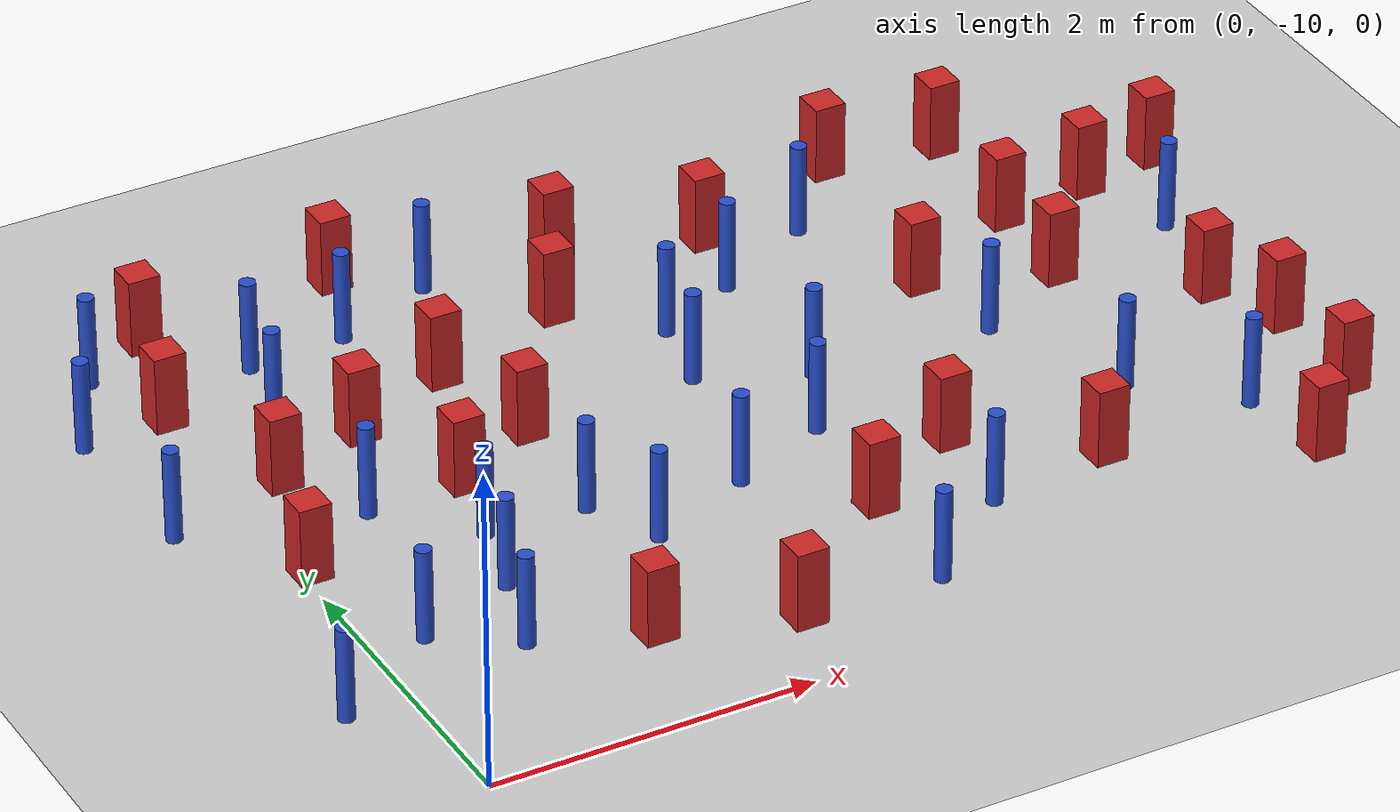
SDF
<sdf version="1.6">
 <world name="default">
  <model name="ground_plane">
   <static>1</static>
   <link name="link">
    <collision name="collision">
     <geometry><plane><normal>0 0 1</normal><size>100 100</size></plane></geometry>
     <surface><friction><ode><mu>100</mu><mu2>50</mu2></ode></friction></surface>
    </collision>
    <visual name="visual">
     <cast_shadows>0</cast_shadows>
     <geometry><plane><normal>0 0 1</normal><size>100 100</size></plane></geometry>
     <material>
      <ambient>1.0 1.0 1.0 1.0</ambient>
      <diffuse>0.8 0.8 0.8 1.0</diffuse>
      <specular>0.01 0.01 0.01 1.000000</specular>
     </material>
    </visual>
   </link>
  </model>
  <model name="pole_obstacle0">
   <static>true</static>
   <pose>0.675583433063 -5.69856653266 2.88873142074e-08 -9.90536689661e-09 4.60219948993e-07 -1.20965994957e-07</pose>
   <link name="link">
    <pose>0 0 0.3 0 -0 0</pose>
    <inertial>
     <mass>1</mass>
     <inertia><ixx>0.145833</ixx><ixy>0</ixy><ixz>0</ixz><iyy>0.145833</iyy><iyz>0</iyz><izz>0.125</izz></inertia>
    </inertial>
    <collision name="collision">
     <geometry><cylinder><radius>0.05</radius><length>.6</length></cylinder></geometry>
    </collision>
    <visual name="visual">
     <geometry><cylinder><radius>0.05</radius><length>.6</length></cylinder></geometry>
     <material>
      <script><name>Gazebo/Blue</name><uri>file://media/materials/scripts/gazebo.material</uri></script>
     </material>
    </visual>
   </link>
  </model>
  <model name="pole_obstacle5">
   <static>true</static>
   <pose>-0.207026416961 -5.39935714129 2.88873142074e-08 -9.90536689703e-09 4.60219948992e-07 -1.20965994959e-07</pose>
   <link name="link">
    <pose>0 0 0.3 0 -0 0</pose>
    <inertial>
     <mass>1</mass>
     <inertia><ixx>0.145833</ixx><ixy>0</ixy><ixz>0</ixz><iyy>0.145833</iyy><iyz>0</iyz><izz>0.125</izz></inertia>
    </inertial>
    <collision name="collision">
     <geometry><cylinder><radius>0.05</radius><length>.6</length></cylinder></geometry>
    </collision>
    <visual name="visual">
     <geometry><cylinder><radius>0.05</radius><length>.6</length></cylinder></geometry>
     <material>
      <script><name>Gazebo/Blue</name><uri>file://media/materials/scripts/gazebo.material</uri></script>
     </material>
    </visual>
   </link>
  </model>
  <model name="pole_obstacle6">
   <static>true</static>
   <pose>5.54569340922 -8.79581876974 2.88873142074e-08 -9.9053668967e-09 4.60219948993e-07 -1.20965994957e-07</pose>
   <link name="link">
    <pose>0 0 0.3 0 -0 0</pose>
    <inertial>
     <mass>1</mass>
     <inertia><ixx>0.145833</ixx><ixy>0</ixy><ixz>0</ixz><iyy>0.145833</iyy><iyz>0</iyz><izz>0.125</izz></inertia>
    </inertial>
    <collision name="collision">
     <geometry><cylinder><radius>0.05</radius><length>.6</length></cylinder></geometry>
    </collision>
    <visual name="visual">
     <geometry><cylinder><radius>0.05</radius><length>.6</length></cylinder></geometry>
     <material>
      <script><name>Gazebo/Blue</name><uri>file://media/materials/scripts/gazebo.material</uri></script>
     </material>
    </visual>
   </link>
  </model>
  <model name="square_post_obstacle2">
   <static>true</static>
   <pose>4.65110520689 -5.38284610721 8.22691968438e-08 7.2212513382e-06 -7.54495500217e-07 2.29674213826e-05</pose>
   <link name="link">
    <pose>0 0 0.25 0 -0 0</pose>
    <inertial>
     <mass>100</mass>
     <inertia>
      <ixx>0.166667</ixx>
      <ixy>0</ixy>
      <ixz>0</ixz>
      <iyy>0.166667</iyy>
      <iyz>0</iyz>
      <izz>0.166667</izz>
     </inertia>
    </inertial>
    <collision name="collision"><geometry><box><size>.2 .2 .5</size></box></geometry></collision>
    <visual name="visual">
     <geometry><box><size>.2 .2 .5</size></box></geometry>
     <material>
      <script><name>Gazebo/Red</name><uri>file://media/materials/scripts/gazebo.material</uri></script>
     </material>
    </visual>
   </link>
  </model>
  <model name="pole_obstacle8">
   <static>true</static>
   <pose>1.08298436727 -7.86564104665 2.88873142074e-08 -9.90536689852e-09 4.60219948989e-07 -1.2096599496e-07</pose>
   <link name="link">
    <pose>0 0 0.3 0 -0 0</pose>
    <inertial>
     <mass>1</mass>
     <inertia><ixx>0.145833</ixx><ixy>0</ixy><ixz>0</ixz><iyy>0.145833</iyy><iyz>0</iyz><izz>0.125</izz></inertia>
    </inertial>
    <collision name="collision">
     <geometry><cylinder><radius>0.05</radius><length>.6</length></cylinder></geometry>
    </collision>
    <visual name="visual">
     <geometry><cylinder><radius>0.05</radius><length>.6</length></cylinder></geometry>
     <material>
      <script><name>Gazebo/Blue</name><uri>file://media/materials/scripts/gazebo.material</uri></script>
     </material>
    </visual>
   </link>
  </model>
  <model name="square_post_obstacle13">
   <static>true</static>
   <pose>0.0485558772936 -7.73937814161 8.22691968438e-08 7.2212513382e-06 -7.54495500217e-07 2.29674213826e-05</pose>
   <link name="link">
    <pose>0 0 0.25 0 -0 0</pose>
    <inertial>
     <mass>100</mass>
     <inertia>
      <ixx>0.166667</ixx>
      <ixy>0</ixy>
      <ixz>0</ixz>
      <iyy>0.166667</iyy>
      <iyz>0</iyz>
      <izz>0.166667</izz>
     </inertia>
    </inertial>
    <collision name="collision"><geometry><box><size>.2 .2 .5</size></box></geometry></collision>
    <visual name="visual">
     <geometry><box><size>.2 .2 .5</size></box></geometry>
     <material>
      <script><name>Gazebo/Red</name><uri>file://media/materials/scripts/gazebo.material</uri></script>
     </material>
    </visual>
   </link>
  </model>
  <model name="pole_obstacle30">
   <static>true</static>
   <pose>0.598111840297 -7.36568905211 2.88873142074e-08 -9.90536689661e-09 4.60219948993e-07 -1.20965994957e-07</pose>
   <link name="link">
    <pose>0 0 0.3 0 -0 0</pose>
    <inertial>
     <mass>1</mass>
     <inertia><ixx>0.145833</ixx><ixy>0</ixy><ixz>0</ixz><iyy>0.145833</iyy><iyz>0</iyz><izz>0.125</izz></inertia>
    </inertial>
    <collision name="collision">
     <geometry><cylinder><radius>0.05</radius><length>.6</length></cylinder></geometry>
    </collision>
    <visual name="visual">
     <geometry><cylinder><radius>0.05</radius><length>.6</length></cylinder></geometry>
     <material>
      <script><name>Gazebo/Blue</name><uri>file://media/materials/scripts/gazebo.material</uri></script>
     </material>
    </visual>
   </link>
  </model>
  <model name="square_post_obstacle22">
   <static>true</static>
   <pose>1.75562362098 -7.05909560668 8.22691968438e-08 7.2212513382e-06 -7.54495500217e-07 2.29674213826e-05</pose>
   <link name="link">
    <pose>0 0 0.25 0 -0 0</pose>
    <inertial>
     <mass>100</mass>
     <inertia>
      <ixx>0.166667</ixx>
      <ixy>0</ixy>
      <ixz>0</ixz>
      <iyy>0.166667</iyy>
      <iyz>0</iyz>
      <izz>0.166667</izz>
     </inertia>
    </inertial>
    <collision name="collision"><geometry><box><size>.2 .2 .5</size></box></geometry></collision>
    <visual name="visual">
     <geometry><box><size>.2 .2 .5</size></box></geometry>
     <material>
      <script><name>Gazebo/Red</name><uri>file://media/materials/scripts/gazebo.material</uri></script>
     </material>
    </visual>
   </link>
  </model>
  <model name="pole_obstacle31">
   <static>true</static>
   <pose>3.10322032923 -9.47544317201 2.88873142074e-08 -9.90536692318e-09 4.6021994893e-07 -1.20965994988e-07</pose>
   <link name="link">
    <pose>0 0 0.3 0 -0 0</pose>
    <inertial>
     <mass>1</mass>
     <inertia><ixx>0.145833</ixx><ixy>0</ixy><ixz>0</ixz><iyy>0.145833</iyy><iyz>0</iyz><izz>0.125</izz></inertia>
    </inertial>
    <collision name="collision">
     <geometry><cylinder><radius>0.05</radius><length>.6</length></cylinder></geometry>
    </collision>
    <visual name="visual">
     <geometry><cylinder><radius>0.05</radius><length>.6</length></cylinder></geometry>
     <material>
      <script><name>Gazebo/Blue</name><uri>file://media/materials/scripts/gazebo.material</uri></script>
     </material>
    </visual>
   </link>
  </model>
  <model name="square_post_obstacle28">
   <static>true</static>
   <pose>3.63431837287 -5.7334413976 8.22691968438e-08 7.2212513382e-06 -7.54495500217e-07 2.29674213826e-05</pose>
   <link name="link">
    <pose>0 0 0.25 0 -0 0</pose>
    <inertial>
     <mass>100</mass>
     <inertia>
      <ixx>0.166667</ixx>
      <ixy>0</ixy>
      <ixz>0</ixz>
      <iyy>0.166667</iyy>
      <iyz>0</iyz>
      <izz>0.166667</izz>
     </inertia>
    </inertial>
    <collision name="collision"><geometry><box><size>.2 .2 .5</size></box></geometry></collision>
    <visual name="visual">
     <geometry><box><size>.2 .2 .5</size></box></geometry>
     <material>
      <script><name>Gazebo/Red</name><uri>file://media/materials/scripts/gazebo.material</uri></script>
     </material>
    </visual>
   </link>
  </model>
  <model name="pole_obstacle36">
   <static>true</static>
   <pose>0.570484334391 -6.22719425879 2.88873142074e-08 -9.90536689661e-09 4.60219948993e-07 -1.20965994957e-07</pose>
   <link name="link">
    <pose>0 0 0.3 0 -0 0</pose>
    <inertial>
     <mass>1</mass>
     <inertia><ixx>0.145833</ixx><ixy>0</ixy><ixz>0</ixz><iyy>0.145833</iyy><iyz>0</iyz><izz>0.125</izz></inertia>
    </inertial>
    <collision name="collision">
     <geometry><cylinder><radius>0.05</radius><length>.6</length></cylinder></geometry>
    </collision>
    <visual name="visual">
     <geometry><cylinder><radius>0.05</radius><length>.6</length></cylinder></geometry>
     <material>
      <script><name>Gazebo/Blue</name><uri>file://media/materials/scripts/gazebo.material</uri></script>
     </material>
    </visual>
   </link>
  </model>
  <model name="square_post_obstacle31">
   <static>true</static>
   <pose>5.96031657942 -7.65763944291 8.22691968438e-08 7.22125133819e-06 -7.54495500217e-07 2.29674213826e-05</pose>
   <link name="link">
    <pose>0 0 0.25 0 -0 0</pose>
    <inertial>
     <mass>100</mass>
     <inertia>
      <ixx>0.166667</ixx>
      <ixy>0</ixy>
      <ixz>0</ixz>
      <iyy>0.166667</iyy>
      <iyz>0</iyz>
      <izz>0.166667</izz>
     </inertia>
    </inertial>
    <collision name="collision"><geometry><box><size>.2 .2 .5</size></box></geometry></collision>
    <visual name="visual">
     <geometry><box><size>.2 .2 .5</size></box></geometry>
     <material>
      <script><name>Gazebo/Red</name><uri>file://media/materials/scripts/gazebo.material</uri></script>
     </material>
    </visual>
   </link>
  </model>
  <model name="square_post_obstacle39">
   <static>true</static>
   <pose>5.30831428107 -6.38712691304 8.22691968438e-08 7.2212513382e-06 -7.54495500217e-07 2.29674213826e-05</pose>
   <link name="link">
    <pose>0 0 0.25 0 -0 0</pose>
    <inertial>
     <mass>100</mass>
     <inertia>
      <ixx>0.166667</ixx>
      <ixy>0</ixy>
      <ixz>0</ixz>
      <iyy>0.166667</iyy>
      <iyz>0</iyz>
      <izz>0.166667</izz>
     </inertia>
    </inertial>
    <collision name="collision"><geometry><box><size>.2 .2 .5</size></box></geometry></collision>
    <visual name="visual">
     <geometry><box><size>.2 .2 .5</size></box></geometry>
     <material>
      <script><name>Gazebo/Red</name><uri>file://media/materials/scripts/gazebo.material</uri></script>
     </material>
    </visual>
   </link>
  </model>
  <model name="pole_obstacle52">
   <static>true</static>
   <pose>3.74567068483 -8.95441529412 2.88873142074e-08 -9.90536692318e-09 4.6021994893e-07 -1.20965994988e-07</pose>
   <link name="link">
    <pose>0 0 0.3 0 -0 0</pose>
    <inertial>
     <mass>1</mass>
     <inertia><ixx>0.145833</ixx><ixy>0</ixy><ixz>0</ixz><iyy>0.145833</iyy><iyz>0</iyz><izz>0.125</izz></inertia>
    </inertial>
    <collision name="collision">
     <geometry><cylinder><radius>0.05</radius><length>.6</length></cylinder></geometry>
    </collision>
    <visual name="visual">
     <geometry><cylinder><radius>0.05</radius><length>.6</length></cylinder></geometry>
     <material>
      <script><name>Gazebo/Blue</name><uri>file://media/materials/scripts/gazebo.material</uri></script>
     </material>
    </visual>
   </link>
  </model>
  <model name="pole_obstacle55">
   <static>true</static>
   <pose>1.29039633156 -5.6681540835 2.88873142074e-08 -9.90536689852e-09 4.60219948989e-07 -1.2096599496e-07</pose>
   <link name="link">
    <pose>0 0 0.3 0 -0 0</pose>
    <inertial>
     <mass>1</mass>
     <inertia><ixx>0.145833</ixx><ixy>0</ixy><ixz>0</ixz><iyy>0.145833</iyy><iyz>0</iyz><izz>0.125</izz></inertia>
    </inertial>
    <collision name="collision">
     <geometry><cylinder><radius>0.05</radius><length>.6</length></cylinder></geometry>
    </collision>
    <visual name="visual">
     <geometry><cylinder><radius>0.05</radius><length>.6</length></cylinder></geometry>
     <material>
      <script><name>Gazebo/Blue</name><uri>file://media/materials/scripts/gazebo.material</uri></script>
     </material>
    </visual>
   </link>
  </model>
  <model name="square_post_obstacle53">
   <static>true</static>
   <pose>1.44937504304 -9.17970778277 8.22691968438e-08 7.22125133819e-06 -7.54495500217e-07 2.29674213826e-05</pose>
   <link name="link">
    <pose>0 0 0.25 0 -0 0</pose>
    <inertial>
     <mass>100</mass>
     <inertia>
      <ixx>0.166667</ixx>
      <ixy>0</ixy>
      <ixz>0</ixz>
      <iyy>0.166667</iyy>
      <iyz>0</iyz>
      <izz>0.166667</izz>
     </inertia>
    </inertial>
    <collision name="collision"><geometry><box><size>.2 .2 .5</size></box></geometry></collision>
    <visual name="visual">
     <geometry><box><size>.2 .2 .5</size></box></geometry>
     <material>
      <script><name>Gazebo/Red</name><uri>file://media/materials/scripts/gazebo.material</uri></script>
     </material>
    </visual>
   </link>
  </model>
  <model name="pole_obstacle74">
   <static>true</static>
   <pose>1.70008067975 -7.91047712542 2.88873142074e-08 -9.90536689852e-09 4.60219948989e-07 -1.2096599496e-07</pose>
   <link name="link">
    <pose>0 0 0.3 0 -0 0</pose>
    <inertial>
     <mass>1</mass>
     <inertia><ixx>0.145833</ixx><ixy>0</ixy><ixz>0</ixz><iyy>0.145833</iyy><iyz>0</iyz><izz>0.125</izz></inertia>
    </inertial>
    <collision name="collision">
     <geometry><cylinder><radius>0.05</radius><length>.6</length></cylinder></geometry>
    </collision>
    <visual name="visual">
     <geometry><cylinder><radius>0.05</radius><length>.6</length></cylinder></geometry>
     <material>
      <script><name>Gazebo/Blue</name><uri>file://media/materials/scripts/gazebo.material</uri></script>
     </material>
    </visual>
   </link>
  </model>
  <model name="pole_obstacle77">
   <static>true</static>
   <pose>-0.46323432677 -7.06206386517 2.88873142074e-08 -9.90536689758e-09 4.60219948991e-07 -1.20965994957e-07</pose>
   <link name="link">
    <pose>0 0 0.3 0 -0 0</pose>
    <inertial>
     <mass>1</mass>
     <inertia><ixx>0.145833</ixx><ixy>0</ixy><ixz>0</ixz><iyy>0.145833</iyy><iyz>0</iyz><izz>0.125</izz></inertia>
    </inertial>
    <collision name="collision">
     <geometry><cylinder><radius>0.05</radius><length>.6</length></cylinder></geometry>
    </collision>
    <visual name="visual">
     <geometry><cylinder><radius>0.05</radius><length>.6</length></cylinder></geometry>
     <material>
      <script><name>Gazebo/Blue</name><uri>file://media/materials/scripts/gazebo.material</uri></script>
     </material>
    </visual>
   </link>
  </model>
  <model name="square_post_obstacle67">
   <static>true</static>
   <pose>6.45340472667 -6.20857471261 8.22691968438e-08 7.2212513382e-06 -7.54495500217e-07 2.29674213826e-05</pose>
   <link name="link">
    <pose>0 0 0.25 0 -0 0</pose>
    <inertial>
     <mass>100</mass>
     <inertia>
      <ixx>0.166667</ixx>
      <ixy>0</ixy>
      <ixz>0</ixz>
      <iyy>0.166667</iyy>
      <iyz>0</iyz>
      <izz>0.166667</izz>
     </inertia>
    </inertial>
    <collision name="collision"><geometry><box><size>.2 .2 .5</size></box></geometry></collision>
    <visual name="visual">
     <geometry><box><size>.2 .2 .5</size></box></geometry>
     <material>
      <script><name>Gazebo/Red</name><uri>file://media/materials/scripts/gazebo.material</uri></script>
     </material>
    </visual>
   </link>
  </model>
  <model name="square_post_obstacle83">
   <static>true</static>
   <pose>6.13631079253 -8.89376324997 8.22691968438e-08 7.2212513382e-06 -7.54495500217e-07 2.29674213826e-05</pose>
   <link name="link">
    <pose>0 0 0.25 0 -0 0</pose>
    <inertial>
     <mass>100</mass>
     <inertia>
      <ixx>0.166667</ixx>
      <ixy>0</ixy>
      <ixz>0</ixz>
      <iyy>0.166667</iyy>
      <iyz>0</iyz>
      <izz>0.166667</izz>
     </inertia>
    </inertial>
    <collision name="collision"><geometry><box><size>.2 .2 .5</size></box></geometry></collision>
    <visual name="visual">
     <geometry><box><size>.2 .2 .5</size></box></geometry>
     <material>
      <script><name>Gazebo/Red</name><uri>file://media/materials/scripts/gazebo.material</uri></script>
     </material>
    </visual>
   </link>
  </model>
  <model name="pole_obstacle92">
   <static>true</static>
   <pose>-0.518571818177 -5.99356535918 2.88873142074e-08 -9.90536689526e-09 4.60219948997e-07 -1.20965994955e-07</pose>
   <link name="link">
    <pose>0 0 0.3 0 -0 0</pose>
    <inertial>
     <mass>1</mass>
     <inertia><ixx>0.145833</ixx><ixy>0</ixy><ixz>0</ixz><iyy>0.145833</iyy><iyz>0</iyz><izz>0.125</izz></inertia>
    </inertial>
    <collision name="collision">
     <geometry><cylinder><radius>0.05</radius><length>.6</length></cylinder></geometry>
    </collision>
    <visual name="visual">
     <geometry><cylinder><radius>0.05</radius><length>.6</length></cylinder></geometry>
     <material>
      <script><name>Gazebo/Blue</name><uri>file://media/materials/scripts/gazebo.material</uri></script>
     </material>
    </visual>
   </link>
  </model>
  <model name="pole_obstacle93">
   <static>true</static>
   <pose>1.94373811365 -5.40981131351 2.88873142074e-08 -9.90536689852e-09 4.60219948989e-07 -1.2096599496e-07</pose>
   <link name="link">
    <pose>0 0 0.3 0 -0 0</pose>
    <inertial>
     <mass>1</mass>
     <inertia><ixx>0.145833</ixx><ixy>0</ixy><ixz>0</ixz><iyy>0.145833</iyy><iyz>0</iyz><izz>0.125</izz></inertia>
    </inertial>
    <collision name="collision">
     <geometry><cylinder><radius>0.05</radius><length>.6</length></cylinder></geometry>
    </collision>
    <visual name="visual">
     <geometry><cylinder><radius>0.05</radius><length>.6</length></cylinder></geometry>
     <material>
      <script><name>Gazebo/Blue</name><uri>file://media/materials/scripts/gazebo.material</uri></script>
     </material>
    </visual>
   </link>
  </model>
  <model name="pole_obstacle96">
   <static>true</static>
   <pose>6.13092266194 -6.91959988411 2.88873142074e-08 -9.90536690842e-09 4.60219948965e-07 -1.20965994976e-07</pose>
   <link name="link">
    <pose>0 0 0.3 0 -0 0</pose>
    <inertial>
     <mass>1</mass>
     <inertia><ixx>0.145833</ixx><ixy>0</ixy><ixz>0</ixz><iyy>0.145833</iyy><iyz>0</iyz><izz>0.125</izz></inertia>
    </inertial>
    <collision name="collision">
     <geometry><cylinder><radius>0.05</radius><length>.6</length></cylinder></geometry>
    </collision>
    <visual name="visual">
     <geometry><cylinder><radius>0.05</radius><length>.6</length></cylinder></geometry>
     <material>
      <script><name>Gazebo/Blue</name><uri>file://media/materials/scripts/gazebo.material</uri></script>
     </material>
    </visual>
   </link>
  </model>
  <model name="pole_obstacle97">
   <static>true</static>
   <pose>4.18607396167 -5.91270285634 2.88873142074e-08 -9.90536690842e-09 4.60219948965e-07 -1.20965994976e-07</pose>
   <link name="link">
    <pose>0 0 0.3 0 -0 0</pose>
    <inertial>
     <mass>1</mass>
     <inertia><ixx>0.145833</ixx><ixy>0</ixy><ixz>0</ixz><iyy>0.145833</iyy><iyz>0</iyz><izz>0.125</izz></inertia>
    </inertial>
    <collision name="collision">
     <geometry><cylinder><radius>0.05</radius><length>.6</length></cylinder></geometry>
    </collision>
    <visual name="visual">
     <geometry><cylinder><radius>0.05</radius><length>.6</length></cylinder></geometry>
     <material>
      <script><name>Gazebo/Blue</name><uri>file://media/materials/scripts/gazebo.material</uri></script>
     </material>
    </visual>
   </link>
  </model>
  <model name="pole_obstacle99">
   <static>true</static>
   <pose>3.2318844253 -7.83187951567 2.88873142074e-08 -9.90536689859e-09 4.60219948989e-07 -1.20965994961e-07</pose>
   <link name="link">
    <pose>0 0 0.3 0 -0 0</pose>
    <inertial>
     <mass>1</mass>
     <inertia><ixx>0.145833</ixx><ixy>0</ixy><ixz>0</ixz><iyy>0.145833</iyy><iyz>0</iyz><izz>0.125</izz></inertia>
    </inertial>
    <collision name="collision">
     <geometry><cylinder><radius>0.05</radius><length>.6</length></cylinder></geometry>
    </collision>
    <visual name="visual">
     <geometry><cylinder><radius>0.05</radius><length>.6</length></cylinder></geometry>
     <material>
      <script><name>Gazebo/Blue</name><uri>file://media/materials/scripts/gazebo.material</uri></script>
     </material>
    </visual>
   </link>
  </model>
  <model name="pole_obstacle100">
   <static>true</static>
   <pose>1.91688635931 -8.36522365853 2.88873142074e-08 -9.90536690474e-09 4.60219948974e-07 -1.2096599497e-07</pose>
   <link name="link">
    <pose>0 0 0.3 0 -0 0</pose>
    <inertial>
     <mass>1</mass>
     <inertia><ixx>0.145833</ixx><ixy>0</ixy><ixz>0</ixz><iyy>0.145833</iyy><iyz>0</iyz><izz>0.125</izz></inertia>
    </inertial>
    <collision name="collision">
     <geometry><cylinder><radius>0.05</radius><length>.6</length></cylinder></geometry>
    </collision>
    <visual name="visual">
     <geometry><cylinder><radius>0.05</radius><length>.6</length></cylinder></geometry>
     <material>
      <script><name>Gazebo/Blue</name><uri>file://media/materials/scripts/gazebo.material</uri></script>
     </material>
    </visual>
   </link>
  </model>
  <model name="square_post_obstacle97">
   <static>true</static>
   <pose>1.58537521487 -6.31892666735 8.22691968438e-08 7.2212513382e-06 -7.54495500217e-07 2.29674213826e-05</pose>
   <link name="link">
    <pose>0 0 0.25 0 -0 0</pose>
    <inertial>
     <mass>100</mass>
     <inertia>
      <ixx>0.166667</ixx>
      <ixy>0</ixy>
      <ixz>0</ixz>
      <iyy>0.166667</iyy>
      <iyz>0</iyz>
      <izz>0.166667</izz>
     </inertia>
    </inertial>
    <collision name="collision"><geometry><box><size>.2 .2 .5</size></box></geometry></collision>
    <visual name="visual">
     <geometry><box><size>.2 .2 .5</size></box></geometry>
     <material>
      <script><name>Gazebo/Red</name><uri>file://media/materials/scripts/gazebo.material</uri></script>
     </material>
    </visual>
   </link>
  </model>
  <model name="square_post_obstacle98">
   <static>true</static>
   <pose>0.00708455474069 -5.9624647893 8.22691968438e-08 7.22125133819e-06 -7.54495500217e-07 2.29674213826e-05</pose>
   <link name="link">
    <pose>0 0 0.25 0 -0 0</pose>
    <inertial>
     <mass>100</mass>
     <inertia>
      <ixx>0.166667</ixx>
      <ixy>0</ixy>
      <ixz>0</ixz>
      <iyy>0.166667</iyy>
      <iyz>0</iyz>
      <izz>0.166667</izz>
     </inertia>
    </inertial>
    <collision name="collision"><geometry><box><size>.2 .2 .5</size></box></geometry></collision>
    <visual name="visual">
     <geometry><box><size>.2 .2 .5</size></box></geometry>
     <material>
      <script><name>Gazebo/Red</name><uri>file://media/materials/scripts/gazebo.material</uri></script>
     </material>
    </visual>
   </link>
  </model>
  <model name="pole_obstacle104">
   <static>true</static>
   <pose>0.322739762193 -8.60876832993 2.88873142074e-08 -9.90536691079e-09 4.6021994896e-07 -1.2096599498e-07</pose>
   <link name="link">
    <pose>0 0 0.3 0 -0 0</pose>
    <inertial>
     <mass>1</mass>
     <inertia><ixx>0.145833</ixx><ixy>0</ixy><ixz>0</ixz><iyy>0.145833</iyy><iyz>0</iyz><izz>0.125</izz></inertia>
    </inertial>
    <collision name="collision">
     <geometry><cylinder><radius>0.05</radius><length>.6</length></cylinder></geometry>
    </collision>
    <visual name="visual">
     <geometry><cylinder><radius>0.05</radius><length>.6</length></cylinder></geometry>
     <material>
      <script><name>Gazebo/Blue</name><uri>file://media/materials/scripts/gazebo.material</uri></script>
     </material>
    </visual>
   </link>
  </model>
  <model name="pole_obstacle105">
   <static>true</static>
   <pose>4.63231336402 -7.39639013359 2.88873142074e-08 -9.90536690842e-09 4.60219948965e-07 -1.20965994976e-07</pose>
   <link name="link">
    <pose>0 0 0.3 0 -0 0</pose>
    <inertial>
     <mass>1</mass>
     <inertia><ixx>0.145833</ixx><ixy>0</ixy><ixz>0</ixz><iyy>0.145833</iyy><iyz>0</iyz><izz>0.125</izz></inertia>
    </inertial>
    <collision name="collision">
     <geometry><cylinder><radius>0.05</radius><length>.6</length></cylinder></geometry>
    </collision>
    <visual name="visual">
     <geometry><cylinder><radius>0.05</radius><length>.6</length></cylinder></geometry>
     <material>
      <script><name>Gazebo/Blue</name><uri>file://media/materials/scripts/gazebo.material</uri></script>
     </material>
    </visual>
   </link>
  </model>
  <model name="pole_obstacle106">
   <static>true</static>
   <pose>2.86139321037 -7.03172533682 2.88873142074e-08 -9.90536689859e-09 4.60219948989e-07 -1.20965994961e-07</pose>
   <link name="link">
    <pose>0 0 0.3 0 -0 0</pose>
    <inertial>
     <mass>1</mass>
     <inertia><ixx>0.145833</ixx><ixy>0</ixy><ixz>0</ixz><iyy>0.145833</iyy><iyz>0</iyz><izz>0.125</izz></inertia>
    </inertial>
    <collision name="collision">
     <geometry><cylinder><radius>0.05</radius><length>.6</length></cylinder></geometry>
    </collision>
    <visual name="visual">
     <geometry><cylinder><radius>0.05</radius><length>.6</length></cylinder></geometry>
     <material>
      <script><name>Gazebo/Blue</name><uri>file://media/materials/scripts/gazebo.material</uri></script>
     </material>
    </visual>
   </link>
  </model>
  <model name="square_post_obstacle109">
   <static>true</static>
   <pose>1.20031488765 -7.35293597036 8.22691968438e-08 7.2212513382e-06 -7.54495500217e-07 2.29674213826e-05</pose>
   <link name="link">
    <pose>0 0 0.25 0 -0 0</pose>
    <inertial>
     <mass>100</mass>
     <inertia>
      <ixx>0.166667</ixx>
      <ixy>0</ixy>
      <ixz>0</ixz>
      <iyy>0.166667</iyy>
      <iyz>0</iyz>
      <izz>0.166667</izz>
     </inertia>
    </inertial>
    <collision name="collision"><geometry><box><size>.2 .2 .5</size></box></geometry></collision>
    <visual name="visual">
     <geometry><box><size>.2 .2 .5</size></box></geometry>
     <material>
      <script><name>Gazebo/Red</name><uri>file://media/materials/scripts/gazebo.material</uri></script>
     </material>
    </visual>
   </link>
  </model>
  <model name="square_post_obstacle110">
   <static>true</static>
   <pose>0.304887065405 -6.84507569531 8.22691968438e-08 7.2212513382e-06 -7.54495500217e-07 2.29674213826e-05</pose>
   <link name="link">
    <pose>0 0 0.25 0 -0 0</pose>
    <inertial>
     <mass>100</mass>
     <inertia>
      <ixx>0.166667</ixx>
      <ixy>0</ixy>
      <ixz>0</ixz>
      <iyy>0.166667</iyy>
      <iyz>0</iyz>
      <izz>0.166667</izz>
     </inertia>
    </inertial>
    <collision name="collision"><geometry><box><size>.2 .2 .5</size></box></geometry></collision>
    <visual name="visual">
     <geometry><box><size>.2 .2 .5</size></box></geometry>
     <material>
      <script><name>Gazebo/Red</name><uri>file://media/materials/scripts/gazebo.material</uri></script>
     </material>
    </visual>
   </link>
  </model>
  <model name="square_post_obstacle117">
   <static>true</static>
   <pose>2.24052092638 -9.44400307617 8.22691968438e-08 7.22125133819e-06 -7.54495500217e-07 2.29674213826e-05</pose>
   <link name="link">
    <pose>0 0 0.25 0 -0 0</pose>
    <inertial>
     <mass>100</mass>
     <inertia>
      <ixx>0.166667</ixx>
      <ixy>0</ixy>
      <ixz>0</ixz>
      <iyy>0.166667</iyy>
      <iyz>0</iyz>
      <izz>0.166667</izz>
     </inertia>
    </inertial>
    <collision name="collision"><geometry><box><size>.2 .2 .5</size></box></geometry></collision>
    <visual name="visual">
     <geometry><box><size>.2 .2 .5</size></box></geometry>
     <material>
      <script><name>Gazebo/Red</name><uri>file://media/materials/scripts/gazebo.material</uri></script>
     </material>
    </visual>
   </link>
  </model>
  <model name="square_post_obstacle124">
   <static>true</static>
   <pose>2.78186843733 -5.4379109846 8.22691968438e-08 7.22125133819e-06 -7.54495500217e-07 2.29674213826e-05</pose>
   <link name="link">
    <pose>0 0 0.25 0 -0 0</pose>
    <inertial>
     <mass>100</mass>
     <inertia>
      <ixx>0.166667</ixx>
      <ixy>0</ixy>
      <ixz>0</ixz>
      <iyy>0.166667</iyy>
      <iyz>0</iyz>
      <izz>0.166667</izz>
     </inertia>
    </inertial>
    <collision name="collision"><geometry><box><size>.2 .2 .5</size></box></geometry></collision>
    <visual name="visual">
     <geometry><box><size>.2 .2 .5</size></box></geometry>
     <material>
      <script><name>Gazebo/Red</name><uri>file://media/materials/scripts/gazebo.material</uri></script>
     </material>
    </visual>
   </link>
  </model>
  <model name="square_post_obstacle131">
   <static>true</static>
   <pose>5.26889909656 -7.06897961863 8.22691968438e-08 7.2212513382e-06 -7.54495500217e-07 2.29674213826e-05</pose>
   <link name="link">
    <pose>0 0 0.25 0 -0 0</pose>
    <inertial>
     <mass>100</mass>
     <inertia>
      <ixx>0.166667</ixx>
      <ixy>0</ixy>
      <ixz>0</ixz>
      <iyy>0.166667</iyy>
      <iyz>0</iyz>
      <izz>0.166667</izz>
     </inertia>
    </inertial>
    <collision name="collision"><geometry><box><size>.2 .2 .5</size></box></geometry></collision>
    <visual name="visual">
     <geometry><box><size>.2 .2 .5</size></box></geometry>
     <material>
      <script><name>Gazebo/Red</name><uri>file://media/materials/scripts/gazebo.material</uri></script>
     </material>
    </visual>
   </link>
  </model>
  <model name="pole_obstacle139">
   <static>true</static>
   <pose>3.49819577835 -7.31691952971 2.88873142074e-08 -9.90536689859e-09 4.60219948989e-07 -1.20965994961e-07</pose>
   <link name="link">
    <pose>0 0 0.3 0 -0 0</pose>
    <inertial>
     <mass>1</mass>
     <inertia><ixx>0.145833</ixx><ixy>0</ixy><ixz>0</ixz><iyy>0.145833</iyy><iyz>0</iyz><izz>0.125</izz></inertia>
    </inertial>
    <collision name="collision">
     <geometry><cylinder><radius>0.05</radius><length>.6</length></cylinder></geometry>
    </collision>
    <visual name="visual">
     <geometry><cylinder><radius>0.05</radius><length>.6</length></cylinder></geometry>
     <material>
      <script><name>Gazebo/Blue</name><uri>file://media/materials/scripts/gazebo.material</uri></script>
     </material>
    </visual>
   </link>
  </model>
  <model name="pole_obstacle149">
   <static>true</static>
   <pose>5.01148218198 -8.28820239965 2.88873142074e-08 -9.9053668967e-09 4.60219948993e-07 -1.20965994957e-07</pose>
   <link name="link">
    <pose>0 0 0.3 0 -0 0</pose>
    <inertial>
     <mass>1</mass>
     <inertia><ixx>0.145833</ixx><ixy>0</ixy><ixz>0</ixz><iyy>0.145833</iyy><iyz>0</iyz><izz>0.125</izz></inertia>
    </inertial>
    <collision name="collision">
     <geometry><cylinder><radius>0.05</radius><length>.6</length></cylinder></geometry>
    </collision>
    <visual name="visual">
     <geometry><cylinder><radius>0.05</radius><length>.6</length></cylinder></geometry>
     <material>
      <script><name>Gazebo/Blue</name><uri>file://media/materials/scripts/gazebo.material</uri></script>
     </material>
    </visual>
   </link>
  </model>
  <model name="square_post_obstacle142">
   <static>true</static>
   <pose>4.5311471858 -8.84480502984 8.22691968438e-08 7.22125133819e-06 -7.54495500217e-07 2.29674213826e-05</pose>
   <link name="link">
    <pose>0 0 0.25 0 -0 0</pose>
    <inertial>
     <mass>100</mass>
     <inertia>
      <ixx>0.166667</ixx>
      <ixy>0</ixy>
      <ixz>0</ixz>
      <iyy>0.166667</iyy>
      <iyz>0</iyz>
      <izz>0.166667</izz>
     </inertia>
    </inertial>
    <collision name="collision"><geometry><box><size>.2 .2 .5</size></box></geometry></collision>
    <visual name="visual">
     <geometry><box><size>.2 .2 .5</size></box></geometry>
     <material>
      <script><name>Gazebo/Red</name><uri>file://media/materials/scripts/gazebo.material</uri></script>
     </material>
    </visual>
   </link>
  </model>
  <model name="square_post_obstacle149">
   <static>true</static>
   <pose>1.49142090886 -5.09019204143 8.22691968438e-08 7.2212513382e-06 -7.54495500217e-07 2.29674213826e-05</pose>
   <link name="link">
    <pose>0 0 0.25 0 -0 0</pose>
    <inertial>
     <mass>100</mass>
     <inertia>
      <ixx>0.166667</ixx>
      <ixy>0</ixy>
      <ixz>0</ixz>
      <iyy>0.166667</iyy>
      <iyz>0</iyz>
      <izz>0.166667</izz>
     </inertia>
    </inertial>
    <collision name="collision"><geometry><box><size>.2 .2 .5</size></box></geometry></collision>
    <visual name="visual">
     <geometry><box><size>.2 .2 .5</size></box></geometry>
     <material>
      <script><name>Gazebo/Red</name><uri>file://media/materials/scripts/gazebo.material</uri></script>
     </material>
    </visual>
   </link>
  </model>
  <model name="pole_obstacle163">
   <static>true</static>
   <pose>-0.391793983075 -9.07181311727 2.88873142074e-08 -9.90536691079e-09 4.6021994896e-07 -1.2096599498e-07</pose>
   <link name="link">
    <pose>0 0 0.3 0 -0 0</pose>
    <inertial>
     <mass>1</mass>
     <inertia><ixx>0.145833</ixx><ixy>0</ixy><ixz>0</ixz><iyy>0.145833</iyy><iyz>0</iyz><izz>0.125</izz></inertia>
    </inertial>
    <collision name="collision">
     <geometry><cylinder><radius>0.05</radius><length>.6</length></cylinder></geometry>
    </collision>
    <visual name="visual">
     <geometry><cylinder><radius>0.05</radius><length>.6</length></cylinder></geometry>
     <material>
      <script><name>Gazebo/Blue</name><uri>file://media/materials/scripts/gazebo.material</uri></script>
     </material>
    </visual>
   </link>
  </model>
  <model name="square_post_obstacle156">
   <static>true</static>
   <pose>5.64417669397 -9.39279188043 8.22691968438e-08 7.22125133819e-06 -7.54495500217e-07 2.29674213826e-05</pose>
   <link name="link">
    <pose>0 0 0.25 0 -0 0</pose>
    <inertial>
     <mass>100</mass>
     <inertia>
      <ixx>0.166667</ixx>
      <ixy>0</ixy>
      <ixz>0</ixz>
      <iyy>0.166667</iyy>
      <iyz>0</iyz>
      <izz>0.166667</izz>
     </inertia>
    </inertial>
    <collision name="collision"><geometry><box><size>.2 .2 .5</size></box></geometry></collision>
    <visual name="visual">
     <geometry><box><size>.2 .2 .5</size></box></geometry>
     <material>
      <script><name>Gazebo/Red</name><uri>file://media/materials/scripts/gazebo.material</uri></script>
     </material>
    </visual>
   </link>
  </model>
  <model name="square_post_obstacle160">
   <static>true</static>
   <pose>5.38253808945 -5.48596058871 8.22691968438e-08 7.2212513382e-06 -7.54495500217e-07 2.29674213826e-05</pose>
   <link name="link">
    <pose>0 0 0.25 0 -0 0</pose>
    <inertial>
     <mass>100</mass>
     <inertia>
      <ixx>0.166667</ixx>
      <ixy>0</ixy>
      <ixz>0</ixz>
      <iyy>0.166667</iyy>
      <iyz>0</iyz>
      <izz>0.166667</izz>
     </inertia>
    </inertial>
    <collision name="collision"><geometry><box><size>.2 .2 .5</size></box></geometry></collision>
    <visual name="visual">
     <geometry><box><size>.2 .2 .5</size></box></geometry>
     <material>
      <script><name>Gazebo/Red</name><uri>file://media/materials/scripts/gazebo.material</uri></script>
     </material>
    </visual>
   </link>
  </model>
  <model name="square_post_obstacle162">
   <static>true</static>
   <pose>2.47160937363 -6.0263617797 8.22691968438e-08 7.2212513382e-06 -7.54495500217e-07 2.29674213826e-05</pose>
   <link name="link">
    <pose>0 0 0.25 0 -0 0</pose>
    <inertial>
     <mass>100</mass>
     <inertia>
      <ixx>0.166667</ixx>
      <ixy>0</ixy>
      <ixz>0</ixz>
      <iyy>0.166667</iyy>
      <iyz>0</iyz>
      <izz>0.166667</izz>
     </inertia>
    </inertial>
    <collision name="collision"><geometry><box><size>.2 .2 .5</size></box></geometry></collision>
    <visual name="visual">
     <geometry><box><size>.2 .2 .5</size></box></geometry>
     <material>
      <script><name>Gazebo/Red</name><uri>file://media/materials/scripts/gazebo.material</uri></script>
     </material>
    </visual>
   </link>
  </model>
  <model name="square_post_obstacle169">
   <static>true</static>
   <pose>6.15772242146 -8.13851431114 8.22691968438e-08 7.2212513382e-06 -7.54495500217e-07 2.29674213826e-05</pose>
   <link name="link">
    <pose>0 0 0.25 0 -0 0</pose>
    <inertial>
     <mass>100</mass>
     <inertia>
      <ixx>0.166667</ixx>
      <ixy>0</ixy>
      <ixz>0</ixz>
      <iyy>0.166667</iyy>
      <iyz>0</iyz>
      <izz>0.166667</izz>
     </inertia>
    </inertial>
    <collision name="collision"><geometry><box><size>.2 .2 .5</size></box></geometry></collision>
    <visual name="visual">
     <geometry><box><size>.2 .2 .5</size></box></geometry>
     <material>
      <script><name>Gazebo/Red</name><uri>file://media/materials/scripts/gazebo.material</uri></script>
     </material>
    </visual>
   </link>
  </model>
  <model name="pole_obstacle179">
   <static>true</static>
   <pose>3.51609570755 -6.25578177123 2.88873142074e-08 -9.90536689859e-09 4.60219948989e-07 -1.20965994961e-07</pose>
   <link name="link">
    <pose>0 0 0.3 0 -0 0</pose>
    <inertial>
     <mass>1</mass>
     <inertia><ixx>0.145833</ixx><ixy>0</ixy><ixz>0</ixz><iyy>0.145833</iyy><iyz>0</iyz><izz>0.125</izz></inertia>
    </inertial>
    <collision name="collision">
     <geometry><cylinder><radius>0.05</radius><length>.6</length></cylinder></geometry>
    </collision>
    <visual name="visual">
     <geometry><cylinder><radius>0.05</radius><length>.6</length></cylinder></geometry>
     <material>
      <script><name>Gazebo/Blue</name><uri>file://media/materials/scripts/gazebo.material</uri></script>
     </material>
    </visual>
   </link>
  </model>
  <model name="square_post_obstacle179">
   <static>true</static>
   <pose>3.82203119608 -8.28477544297 8.22691968438e-08 7.22125133819e-06 -7.54495500217e-07 2.29674213826e-05</pose>
   <link name="link">
    <pose>0 0 0.25 0 -0 0</pose>
    <inertial>
     <mass>100</mass>
     <inertia>
      <ixx>0.166667</ixx>
      <ixy>0</ixy>
      <ixz>0</ixz>
      <iyy>0.166667</iyy>
      <iyz>0</iyz>
      <izz>0.166667</izz>
     </inertia>
    </inertial>
    <collision name="collision"><geometry><box><size>.2 .2 .5</size></box></geometry></collision>
    <visual name="visual">
     <geometry><box><size>.2 .2 .5</size></box></geometry>
     <material>
      <script><name>Gazebo/Red</name><uri>file://media/materials/scripts/gazebo.material</uri></script>
     </material>
    </visual>
   </link>
  </model>
  <model name="square_post_obstacle180">
   <static>true</static>
   <pose>3.13553857446 -8.67241177853 8.22691968438e-08 7.22125133819e-06 -7.54495500217e-07 2.29674213826e-05</pose>
   <link name="link">
    <pose>0 0 0.25 0 -0 0</pose>
    <inertial>
     <mass>100</mass>
     <inertia>
      <ixx>0.166667</ixx>
      <ixy>0</ixy>
      <ixz>0</ixz>
      <iyy>0.166667</iyy>
      <iyz>0</iyz>
      <izz>0.166667</izz>
     </inertia>
    </inertial>
    <collision name="collision"><geometry><box><size>.2 .2 .5</size></box></geometry></collision>
    <visual name="visual">
     <geometry><box><size>.2 .2 .5</size></box></geometry>
     <material>
      <script><name>Gazebo/Red</name><uri>file://media/materials/scripts/gazebo.material</uri></script>
     </material>
    </visual>
   </link>
  </model>
  <model name="square_post_obstacle185">
   <static>true</static>
   <pose>0.912282207713 -6.61322156682 8.22691968438e-08 7.22125133819e-06 -7.54495500217e-07 2.29674213826e-05</pose>
   <link name="link">
    <pose>0 0 0.25 0 -0 0</pose>
    <inertial>
     <mass>100</mass>
     <inertia>
      <ixx>0.166667</ixx>
      <ixy>0</ixy>
      <ixz>0</ixz>
      <iyy>0.166667</iyy>
      <iyz>0</iyz>
      <izz>0.166667</izz>
     </inertia>
    </inertial>
    <collision name="collision"><geometry><box><size>.2 .2 .5</size></box></geometry></collision>
    <visual name="visual">
     <geometry><box><size>.2 .2 .5</size></box></geometry>
     <material>
      <script><name>Gazebo/Red</name><uri>file://media/materials/scripts/gazebo.material</uri></script>
     </material>
    </visual>
   </link>
  </model>
  <model name="square_post_obstacle193">
   <static>true</static>
   <pose>5.92028180102 -6.31031421471 8.22691968438e-08 7.22125133819e-06 -7.54495500217e-07 2.29674213826e-05</pose>
   <link name="link">
    <pose>0 0 0.25 0 -0 0</pose>
    <inertial>
     <mass>100</mass>
     <inertia>
      <ixx>0.166667</ixx>
      <ixy>0</ixy>
      <ixz>0</ixz>
      <iyy>0.166667</iyy>
      <iyz>0</iyz>
      <izz>0.166667</izz>
     </inertia>
    </inertial>
    <collision name="collision"><geometry><box><size>.2 .2 .5</size></box></geometry></collision>
    <visual name="visual">
     <geometry><box><size>.2 .2 .5</size></box></geometry>
     <material>
      <script><name>Gazebo/Red</name><uri>file://media/materials/scripts/gazebo.material</uri></script>
     </material>
    </visual>
   </link>
  </model>
  <model name="square_post_obstacle194">
   <static>true</static>
   <pose>0.231028935788 -5.14907908194 8.22691968438e-08 7.2212513382e-06 -7.54495500217e-07 2.29674213826e-05</pose>
   <link name="link">
    <pose>0 0 0.25 0 -0 0</pose>
    <inertial>
     <mass>100</mass>
     <inertia>
      <ixx>0.166667</ixx>
      <ixy>0</ixy>
      <ixz>0</ixz>
      <iyy>0.166667</iyy>
      <iyz>0</iyz>
      <izz>0.166667</izz>
     </inertia>
    </inertial>
    <collision name="collision"><geometry><box><size>.2 .2 .5</size></box></geometry></collision>
    <visual name="visual">
     <geometry><box><size>.2 .2 .5</size></box></geometry>
     <material>
      <script><name>Gazebo/Red</name><uri>file://media/materials/scripts/gazebo.material</uri></script>
     </material>
    </visual>
   </link>
  </model>
  <model name="pole_obstacle192">
   <static>true</static>
   <pose>0.78687522466 -8.9265204974 2.88873142074e-08 -9.90536690779e-09 4.60219948967e-07 -1.20965994975e-07</pose>
   <link name="link">
    <pose>0 0 0.3 0 -0 0</pose>
    <inertial>
     <mass>1</mass>
     <inertia><ixx>0.145833</ixx><ixy>0</ixy><ixz>0</ixz><iyy>0.145833</iyy><iyz>0</iyz><izz>0.125</izz></inertia>
    </inertial>
    <collision name="collision">
     <geometry><cylinder><radius>0.05</radius><length>.6</length></cylinder></geometry>
    </collision>
    <visual name="visual">
     <geometry><cylinder><radius>0.05</radius><length>.6</length></cylinder></geometry>
     <material>
      <script><name>Gazebo/Blue</name><uri>file://media/materials/scripts/gazebo.material</uri></script>
     </material>
    </visual>
   </link>
  </model>
  <model name="pole_obstacle204">
   <static>true</static>
   <pose>0.952017131197 -8.37163998956 2.88873142074e-08 -9.9053669105e-09 4.6021994896e-07 -1.20965994979e-07</pose>
   <link name="link">
    <pose>0 0 0.3 0 -0 0</pose>
    <inertial>
     <mass>1</mass>
     <inertia><ixx>0.145833</ixx><ixy>0</ixy><ixz>0</ixz><iyy>0.145833</iyy><iyz>0</iyz><izz>0.125</izz></inertia>
    </inertial>
    <collision name="collision">
     <geometry><cylinder><radius>0.05</radius><length>.6</length></cylinder></geometry>
    </collision>
    <visual name="visual">
     <geometry><cylinder><radius>0.05</radius><length>.6</length></cylinder></geometry>
     <material>
      <script><name>Gazebo/Blue</name><uri>file://media/materials/scripts/gazebo.material</uri></script>
     </material>
    </visual>
   </link>
  </model>
  <model name="pole_obstacle206">
   <static>true</static>
   <pose>2.59120264667 -8.09168229672 2.88873142074e-08 -9.90536692318e-09 4.6021994893e-07 -1.20965994988e-07</pose>
   <link name="link">
    <pose>0 0 0.3 0 -0 0</pose>
    <inertial>
     <mass>1</mass>
     <inertia><ixx>0.145833</ixx><ixy>0</ixy><ixz>0</ixz><iyy>0.145833</iyy><iyz>0</iyz><izz>0.125</izz></inertia>
    </inertial>
    <collision name="collision">
     <geometry><cylinder><radius>0.05</radius><length>.6</length></cylinder></geometry>
    </collision>
    <visual name="visual">
     <geometry><cylinder><radius>0.05</radius><length>.6</length></cylinder></geometry>
     <material>
      <script><name>Gazebo/Blue</name><uri>file://media/materials/scripts/gazebo.material</uri></script>
     </material>
    </visual>
   </link>
  </model>
  <model name="square_post_obstacle211">
   <static>true</static>
   <pose>4.50343926238 -6.77133900988 8.22691968438e-08 7.2212513382e-06 -7.54495500217e-07 2.29674213826e-05</pose>
   <link name="link">
    <pose>0 0 0.25 0 -0 0</pose>
    <inertial>
     <mass>100</mass>
     <inertia>
      <ixx>0.166667</ixx>
      <ixy>0</ixy>
      <ixz>0</ixz>
      <iyy>0.166667</iyy>
      <iyz>0</iyz>
      <izz>0.166667</izz>
     </inertia>
    </inertial>
    <collision name="collision"><geometry><box><size>.2 .2 .5</size></box></geometry></collision>
    <visual name="visual">
     <geometry><box><size>.2 .2 .5</size></box></geometry>
     <material>
      <script><name>Gazebo/Red</name><uri>file://media/materials/scripts/gazebo.material</uri></script>
     </material>
    </visual>
   </link>
  </model>
  <model name="pole_obstacle217">
   <static>true</static>
   <pose>2.97160128593 -6.51220510935 2.88873142074e-08 -9.90536689859e-09 4.60219948989e-07 -1.20965994961e-07</pose>
   <link name="link">
    <pose>0 0 0.3 0 -0 0</pose>
    <inertial>
     <mass>1</mass>
     <inertia><ixx>0.145833</ixx><ixy>0</ixy><ixz>0</ixz><iyy>0.145833</iyy><iyz>0</iyz><izz>0.125</izz></inertia>
    </inertial>
    <collision name="collision">
     <geometry><cylinder><radius>0.05</radius><length>.6</length></cylinder></geometry>
    </collision>
    <visual name="visual">
     <geometry><cylinder><radius>0.05</radius><length>.6</length></cylinder></geometry>
     <material>
      <script><name>Gazebo/Blue</name><uri>file://media/materials/scripts/gazebo.material</uri></script>
     </material>
    </visual>
   </link>
  </model>
 </world>
</sdf>
